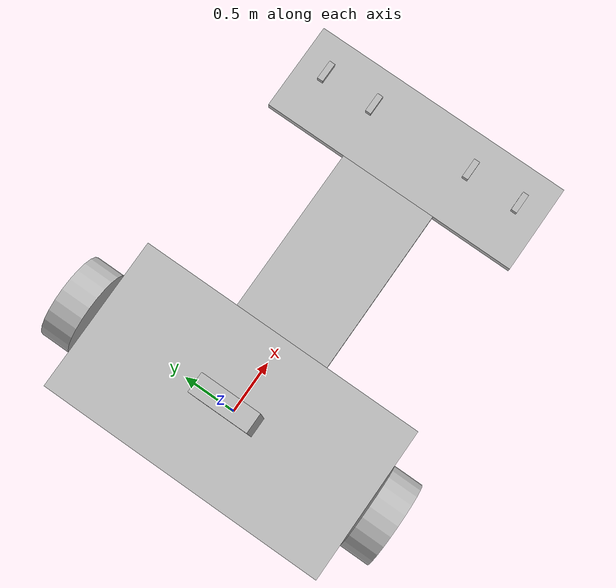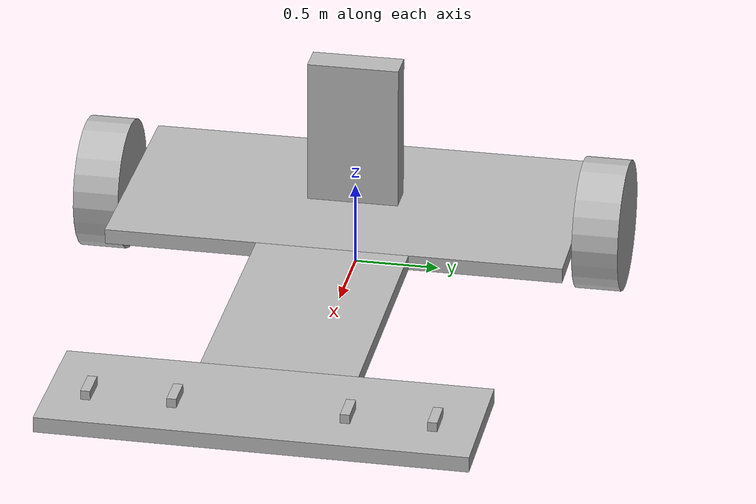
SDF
<sdf version='1.7'>
  <model name='FLF'>
    <link name='base_footprint'>
      <inertial>
        <pose>1.485 0 0.385892 0 -0 0</pose>
        <mass>6.5</mass>
        <inertia>
          <ixx>0.268206</ixx>
          <ixy>-1.6237e-17</ixy>
          <ixz>0.009072</ixz>
          <iyy>7.97406</iyy>
          <iyz>-1.53723e-20</iyz>
          <izz>8.20975</izz>
        </inertia>
      </inertial>
      <collision name='base_footprint_fixed_joint_lump__base_link_collision'>
        <pose>0 0 0.387 0 -0 0</pose>
        <geometry>
          <box>
            <size>1.44 2.7 0.09</size>
          </box>
        </geometry>
      </collision>
      <collision name='base_footprint_fixed_joint_lump__ir_link_collision_1'>
        <pose>2.655 0 0.387 0 -0 0</pose>
        <geometry>
          <box>
            <size>0.81 2.43 0.09</size>
          </box>
        </geometry>
      </collision>
      <collision name='base_footprint_fixed_joint_lump__ir_sensor_1_collision_2'>
        <pose>2.835 0 0.315 0 -0 0</pose>
        <geometry>
          <box>
            <size>0.18 0.054 0.054</size>
          </box>
        </geometry>
      </collision>
      <collision name='base_footprint_fixed_joint_lump__ir_sensor_2_collision_3'>
        <pose>2.745 0.486 0.387 0 -0 0</pose>
        <geometry>
          <box>
            <size>0.18 0.054 0.054</size>
          </box>
        </geometry>
      </collision>
      <collision name='base_footprint_fixed_joint_lump__ir_sensor_3_collision_4'>
        <pose>2.745 0.972 0.387 0 -0 0</pose>
        <geometry>
          <box>
            <size>0.18 0.054 0.054</size>
          </box>
        </geometry>
      </collision>
      <collision name='base_footprint_fixed_joint_lump__ir_sensor_4_collision_5'>
        <pose>2.745 -0.486 0.387 0 -0 0</pose>
        <geometry>
          <box>
            <size>0.18 0.054 0.054</size>
          </box>
        </geometry>
      </collision>
      <collision name='base_footprint_fixed_joint_lump__ir_sensor_5_collision_6'>
        <pose>2.745 -0.972 0.387 0 -0 0</pose>
        <geometry>
          <box>
            <size>0.18 0.054 0.054</size>
          </box>
        </geometry>
      </collision>
      <collision name='base_footprint_fixed_joint_lump__neck_link_collision_7'>
        <pose>1.485 0 0.387 0 -0 0</pose>
        <geometry>
          <box>
            <size>1.53 0.9 0.09</size>
          </box>
        </geometry>
      </collision>
      <collision name='base_footprint_fixed_joint_lump__caster_wheel_collision_8'>
        <pose>1.485 0 0.144 0 -0 0</pose>
        <geometry>
          <sphere>
            <radius>0.1935</radius>
          </sphere>
        </geometry>
      </collision>
      <visual name='base_footprint_fixed_joint_lump__base_link_visual'>
        <pose>0 0 0.387 0 -0 0</pose>
        <geometry>
          <box>
            <size>1.44 2.7 0.09</size>
          </box>
        </geometry>
      </visual>
      <visual name='base_footprint_fixed_joint_lump__ir_link_visual_1'>
        <pose>2.655 0 0.387 0 -0 0</pose>
        <geometry>
          <box>
            <size>0.81 2.43 0.09</size>
          </box>
        </geometry>
      </visual>
      <visual name='base_footprint_fixed_joint_lump__ir_sensor_1_visual_2'>
        <pose>2.745 0 0.315 0 -0 0</pose>
        <geometry>
          <box>
            <size>0.18 0.054 0.054</size>
          </box>
        </geometry>
      </visual>
      <visual name='base_footprint_fixed_joint_lump__ir_sensor_2_visual_3'>
        <pose>2.745 0.486 0.477 0 -0 0</pose>
        <geometry>
          <box>
            <size>0.18 0.054 0.054</size>
          </box>
        </geometry>
      </visual>
      <visual name='base_footprint_fixed_joint_lump__ir_sensor_3_visual_4'>
        <pose>2.745 0.972 0.477 0 -0 0</pose>
        <geometry>
          <box>
            <size>0.18 0.054 0.054</size>
          </box>
        </geometry>
      </visual>
      <visual name='base_footprint_fixed_joint_lump__ir_sensor_4_visual_5'>
        <pose>2.745 -0.486 0.477 0 -0 0</pose>
        <geometry>
          <box>
            <size>0.18 0.054 0.054</size>
          </box>
        </geometry>
      </visual>
      <visual name='base_footprint_fixed_joint_lump__ir_sensor_5_visual_6'>
        <pose>2.745 -0.972 0.477 0 -0 0</pose>
        <geometry>
          <box>
            <size>0.18 0.054 0.054</size>
          </box>
        </geometry>
      </visual>
      <visual name='base_footprint_fixed_joint_lump__neck_link_visual_7'>
        <pose>1.485 0 0.387 0 -0 0</pose>
        <geometry>
          <box>
            <size>1.53 0.9 0.09</size>
          </box>
        </geometry>
      </visual>
      <visual name='base_footprint_fixed_joint_lump__caster_wheel_visual_8'>
        <pose>1.485 0 0.144 0 -0 0</pose>
        <geometry>
          <sphere>
            <radius>0.1935</radius>
          </sphere>
        </geometry>
      </visual>
      <visual name='base_footprint_fixed_joint_lump__test_link_visual_9'>
        <pose>0 0 0.8496 0 -0 0</pose>
        <geometry>
          <box>
            <size>0.18 0.54 0.9</size>
          </box>
        </geometry>
      </visual>
      <sensor name='test_sensor' type='ray'>
        <update_rate>30</update_rate>
        <visualize>1</visualize>
        <ray>
          <scan>
            <horizontal>
              <samples>10</samples>
              <resolution>1</resolution>
              <min_angle>-0.1</min_angle>
              <max_angle>0.1</max_angle>
            </horizontal>
          </scan>
          <range>
            <min>0.01</min>
            <max>1</max>
            <resolution>0.01</resolution>
          </range>
        </ray>
        <plugin name='sensor_plugin' filename='libgazebo_ros_laser.so'>
          <topicName>test_sensor</topicName>
          <frameName>sensor_link</frameName>
        </plugin>
        <pose>0 0 0.8496 0 -0 0</pose>
      </sensor>
    </link>
    <joint name='base_left_wheel_joint' type='revolute'>
      <pose relative_to='base_footprint'>0 1.485 0.387 -1.5708 0 0</pose>
      <parent>base_footprint</parent>
      <child>left_wheel</child>
      <axis>
        <xyz>0 0 1</xyz>
        <limit>
          <lower>-1e+16</lower>
          <upper>1e+16</upper>
        </limit>
        <dynamics>
          <damping>0.5</damping>
          <friction>0.5</friction>
          <spring_reference>0</spring_reference>
          <spring_stiffness>0</spring_stiffness>
        </dynamics>
      </axis>
    </joint>
    <link name='left_wheel'>
      <pose relative_to='base_left_wheel_joint'>0 0 0 0 -0 0</pose>
      <inertial>
        <pose>0 0 0 0 -0 0</pose>
        <mass>0.1</mass>
        <inertia>
          <ixx>1e-05</ixx>
          <ixy>0</ixy>
          <ixz>0</ixz>
          <iyy>1e-05</iyy>
          <iyz>0</iyz>
          <izz>2e-05</izz>
        </inertia>
      </inertial>
      <collision name='left_wheel_collision'>
        <pose>0 0 0 0 -0 0</pose>
        <geometry>
          <cylinder>
            <length>0.27</length>
            <radius>0.387</radius>
          </cylinder>
        </geometry>
        <surface>
          <contact>
            <ode>
              <kp>1000</kp>
              <kd>100</kd>
            </ode>
          </contact>
          <friction>
            <ode>
              <mu>1</mu>
              <mu2>1</mu2>
            </ode>
          </friction>
        </surface>
      </collision>
      <visual name='left_wheel_visual'>
        <pose>0 0 0 0 -0 0</pose>
        <geometry>
          <cylinder>
            <length>0.27</length>
            <radius>0.387</radius>
          </cylinder>
        </geometry>
      </visual>
    </link>
    <joint name='base_right_wheel_joint' type='revolute'>
      <pose relative_to='base_footprint'>0 -1.485 0.387 -1.5708 0 0</pose>
      <parent>base_footprint</parent>
      <child>right_wheel</child>
      <axis>
        <xyz>0 0 1</xyz>
        <limit>
          <lower>-1e+16</lower>
          <upper>1e+16</upper>
        </limit>
        <dynamics>
          <damping>0.5</damping>
          <friction>0.5</friction>
          <spring_reference>0</spring_reference>
          <spring_stiffness>0</spring_stiffness>
        </dynamics>
      </axis>
    </joint>
    <link name='right_wheel'>
      <pose relative_to='base_right_wheel_joint'>0 0 0 0 -0 0</pose>
      <inertial>
        <pose>0 0 0 0 -0 0</pose>
        <mass>0.1</mass>
        <inertia>
          <ixx>1e-05</ixx>
          <ixy>0</ixy>
          <ixz>0</ixz>
          <iyy>1e-05</iyy>
          <iyz>0</iyz>
          <izz>2e-05</izz>
        </inertia>
      </inertial>
      <collision name='right_wheel_collision'>
        <pose>0 0 0 0 -0 0</pose>
        <geometry>
          <cylinder>
            <length>0.27</length>
            <radius>0.387</radius>
          </cylinder>
        </geometry>
        <surface>
          <contact>
            <ode>
              <kp>1000</kp>
              <kd>100</kd>
            </ode>
          </contact>
          <friction>
            <ode>
              <mu>1</mu>
              <mu2>1</mu2>
            </ode>
          </friction>
        </surface>
      </collision>
      <visual name='right_wheel_visual'>
        <pose>0 0 0 0 -0 0</pose>
        <geometry>
          <cylinder>
            <length>0.27</length>
            <radius>0.387</radius>
          </cylinder>
        </geometry>
      </visual>
    </link>
  </model>
</sdf>
